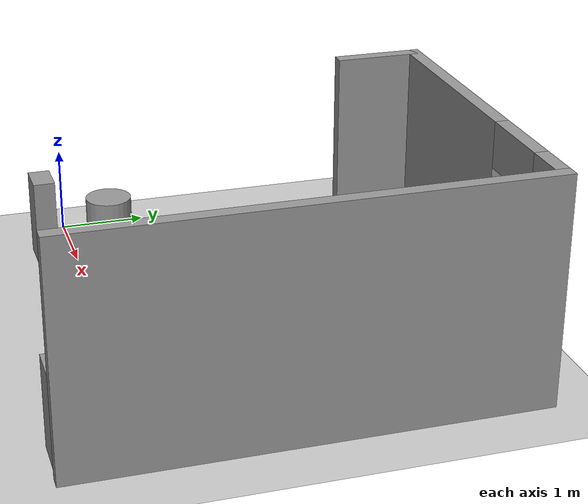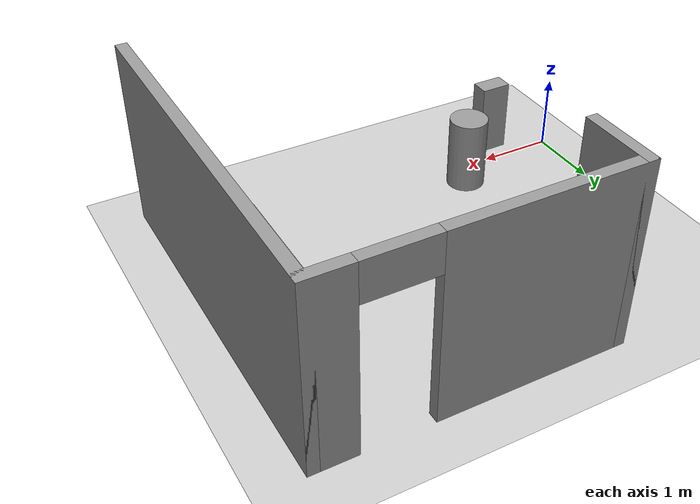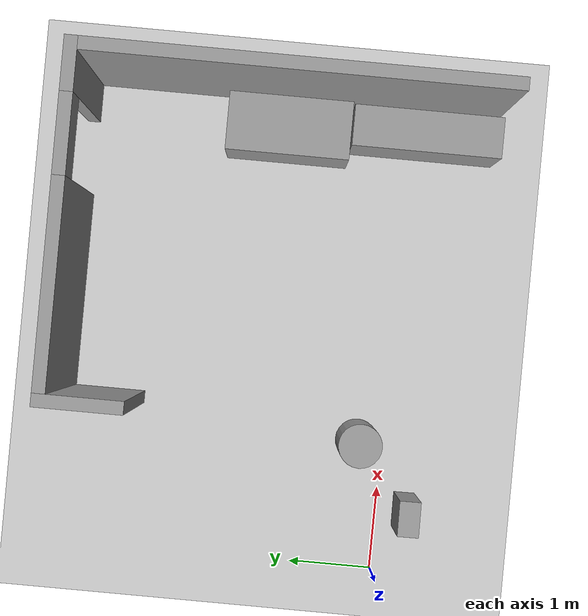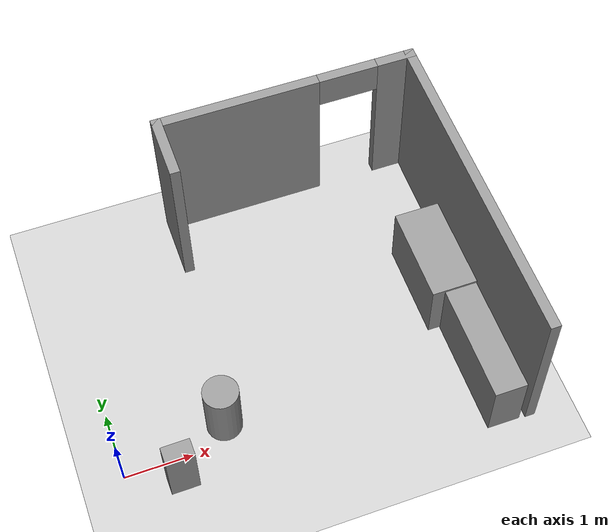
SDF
<sdf version="1.9">
 <world name="default">
  <model name="ground_plane">
   <static>true</static>
   <link name="link">
    <collision name="collision">
     <geometry><plane><normal>0 0 1</normal><size>100 100</size></plane></geometry>
     <surface><friction><ode><mu>100</mu><mu2>50</mu2></ode></friction></surface>
    </collision>
    <visual name="visual">
     <cast_shadows>false</cast_shadows>
     <geometry><plane><normal>0 0 1</normal><size>100 100</size></plane></geometry>
     <material>
      <script><uri>file://media/materials/scripts/gazebo.material</uri><name>Gazebo/Grey</name></script>
     </material>
    </visual>
   </link>
  </model>
  <model name="cma_L5">
   <pose>3.77502 1.45512 0 0 0 0</pose>
   <link name="Wall_0">
    <collision name="Wall_0_Collision">
     <geometry><box><size>1 0.14999999999999999 2.5</size></box></geometry>
     <pose>0 0 1.25 0 0 0</pose>
    </collision>
    <visual name="Wall_0_Visual">
     <pose>0 0 1.25 0 0 0</pose>
     <geometry><box><size>1 0.14999999999999999 2.5</size></box></geometry>
     <material>
      <script><uri>file://media/materials/scripts/gazebo.material</uri><name>Gazebo/Grey</name></script>
      <ambient>1 1 1 1</ambient>
     </material>
    </visual>
    <pose>-1.925 2 0 0 0 1.5708</pose>
   </link>
   <link name="Wall_1">
    <pose>0 2.4249999999999998 0 0 0 0</pose>
    <visual name="Wall_1_Visual_0">
     <pose>-0.75249999999999995 0 1.25 0 0 0</pose>
     <geometry><box><size>2.4950000000000001 0.14999999999999999 2.5</size></box></geometry>
     <material>
      <script><uri>file://media/materials/scripts/gazebo.material</uri><name>Gazebo/Grey</name></script>
      <ambient>1 1 1 1</ambient>
     </material>
    </visual>
    <collision name="Wall_1_Collision_0">
     <geometry><box><size>2.4950000000000001 0.14999999999999999 2.5</size></box></geometry>
     <pose>-0.75249999999999995 0 1.25 0 0 0</pose>
    </collision>
    <visual name="Wall_1_Visual_1">
     <pose>1.6975 0 1.25 0 0 0</pose>
     <geometry><box><size>0.60499999999999998 0.14999999999999999 2.5</size></box></geometry>
     <material>
      <script><uri>file://media/materials/scripts/gazebo.material</uri><name>Gazebo/Grey</name></script>
      <ambient>1 1 1 1</ambient>
     </material>
    </visual>
    <collision name="Wall_1_Collision_1">
     <geometry><box><size>0.60499999999999998 0.14999999999999999 2.5</size></box></geometry>
     <pose>1.6975 0 1.25 0 0 0</pose>
    </collision>
    <visual name="Wall_1_Visual_2">
     <pose>0.94499999999999995 0 2.25 0 0 0</pose>
     <geometry><box><size>0.90000000000000002 0.14999999999999999 0.5</size></box></geometry>
     <material>
      <script><uri>file://media/materials/scripts/gazebo.material</uri><name>Gazebo/Grey</name></script>
      <ambient>1 1 1 1</ambient>
     </material>
    </visual>
    <collision name="Wall_1_Collision_2">
     <geometry><box><size>0.90000000000000002 0.14999999999999999 0.5</size></box></geometry>
     <pose>0.94499999999999995 0 2.25 0 0 0</pose>
    </collision>
   </link>
   <link name="Wall_3">
    <collision name="Wall_3_Collision">
     <geometry><box><size>5 0.14999999999999999 2.5</size></box></geometry>
     <pose>0 0 1.25 0 0 0</pose>
    </collision>
    <visual name="Wall_3_Visual">
     <pose>0 0 1.25 0 0 0</pose>
     <geometry><box><size>5 0.14999999999999999 2.5</size></box></geometry>
     <material>
      <script><uri>file://media/materials/scripts/gazebo.material</uri><name>Gazebo/Grey</name></script>
      <ambient>1 1 1 1</ambient>
     </material>
    </visual>
    <pose>1.925 0 0 0 0 -1.5708</pose>
   </link>
   <static>true</static>
  </model>
  <model name="cma_picador_0">
   <link name="link_2">
    <pose>-0.7258 -1.6910400000000001 0 0 0 0</pose>
    <inertial>
     <mass>0.10473200000000001</mass>
     <inertia>
      <ixx>0.0092790600000000004</ixx>
      <ixy>0</ixy>
      <ixz>0</ixz>
      <iyy>0.010243</iyy>
      <iyz>0</iyz>
      <izz>0.0020667200000000002</izz>
     </inertia>
    </inertial>
    <visual name="visual">
     <geometry><box><size>0.416688 0.25134000000000001 1</size></box></geometry>
     <material>
      <lighting>true</lighting>
      <script><uri>file://media/materials/scripts/gazebo.material</uri><name>Gazebo/Grey</name></script>
      <ambient>0.300000012 0.300000012 0.300000012 1</ambient>
      <diffuse>0.699999988 0.699999988 0.699999988 1</diffuse>
      <specular>0.00999999978 0.00999999978 0.00999999978 1</specular>
      <emissive>0 0 0 1</emissive>
     </material>
    </visual>
    <collision name="collision">
     <geometry><box><size>0.416688 0.25134000000000001 1</size></box></geometry>
     <surface>
      <friction>
       <ode><mu>1</mu><mu2>1</mu2><fdir1>0 0 0</fdir1><slip1>0</slip1><slip2>0</slip2></ode>
       <torsional>
        <coefficient>1</coefficient>
        <patch_radius>0</patch_radius>
        <surface_radius>0</surface_radius>
        <use_patch_radius>true</use_patch_radius>
        <ode><slip>0</slip></ode>
       </torsional>
      </friction>
      <bounce><restitution_coefficient>0</restitution_coefficient><threshold>1000000</threshold></bounce>
      <contact>
       <collide_without_contact>false</collide_without_contact>
       <collide_without_contact_bitmask>1</collide_without_contact_bitmask>
       <collide_bitmask>1</collide_bitmask>
       <ode>
        <soft_cfm>0</soft_cfm>
        <soft_erp>0.20000000000000001</soft_erp>
        <kp>10000000000000</kp>
        <kd>1</kd>
        <max_vel>0.01</max_vel>
        <min_depth>0</min_depth>
       </ode>
       <bullet>
        <split_impulse>true</split_impulse>
        <split_impulse_penetration_threshold>-0.01</split_impulse_penetration_threshold>
        <soft_cfm>0</soft_cfm>
        <soft_erp>0.20000000000000001</soft_erp>
        <kp>10000000000000</kp>
        <kd>1</kd>
       </bullet>
      </contact>
     </surface>
    </collision>
   </link>
   <static>false</static>
   <pose>1.47237 1.3597600000000001 0.50000199999999995 9.9999999999999995e-07 2.0000000000000003e-06 0.0087860000000000004</pose>
  </model>
  <model name="cma_cesto">
   <link name="link_1">
    <pose>-0.32965899999999998 -1.55494 0 0 0 0</pose>
    <inertial>
     <mass>0.267897</mass>
     <inertia>
      <ixx>0.026810199999999999</ixx>
      <ixy>0</ixy>
      <ixz>0</ixz>
      <iyy>0.026810199999999999</iyy>
      <iyz>0</iyz>
      <izz>0.0089711099999999992</izz>
     </inertia>
    </inertial>
    <visual name="visual">
     <geometry><cylinder><radius>0.25879200000000002</radius><length>1</length></cylinder></geometry>
     <material>
      <lighting>true</lighting>
      <script><uri>file://media/materials/scripts/gazebo.material</uri><name>Gazebo/Grey</name></script>
      <ambient>0.300000012 0.300000012 0.300000012 1</ambient>
      <diffuse>0.699999988 0.699999988 0.699999988 1</diffuse>
      <specular>0.00999999978 0.00999999978 0.00999999978 1</specular>
      <emissive>0 0 0 1</emissive>
     </material>
    </visual>
    <collision name="collision">
     <geometry><cylinder><radius>0.25879200000000002</radius><length>1</length></cylinder></geometry>
     <surface>
      <friction>
       <ode><mu>1</mu><mu2>1</mu2><fdir1>0 0 0</fdir1><slip1>0</slip1><slip2>0</slip2></ode>
       <torsional>
        <coefficient>1</coefficient>
        <patch_radius>0</patch_radius>
        <surface_radius>0</surface_radius>
        <use_patch_radius>true</use_patch_radius>
        <ode><slip>0</slip></ode>
       </torsional>
      </friction>
      <bounce><restitution_coefficient>0</restitution_coefficient><threshold>1000000</threshold></bounce>
      <contact>
       <collide_without_contact>false</collide_without_contact>
       <collide_without_contact_bitmask>1</collide_without_contact_bitmask>
       <collide_bitmask>1</collide_bitmask>
       <ode>
        <soft_cfm>0</soft_cfm>
        <soft_erp>0.20000000000000001</soft_erp>
        <kp>10000000000000</kp>
        <kd>1</kd>
        <max_vel>0.01</max_vel>
        <min_depth>0</min_depth>
       </ode>
       <bullet>
        <split_impulse>true</split_impulse>
        <split_impulse_penetration_threshold>-0.01</split_impulse_penetration_threshold>
        <soft_cfm>0</soft_cfm>
        <soft_erp>0.20000000000000001</soft_erp>
        <kp>10000000000000</kp>
        <kd>1</kd>
       </bullet>
      </contact>
     </surface>
    </collision>
   </link>
   <static>false</static>
   <pose>1.9109799999999999 1.85863 0.49999199999999999 0 0 -0.013204999999999998</pose>
  </model>
  <model name="cma_geladeira">
   <link name="link_2">
    <pose>3.0000000000000001e-06 -3.9999999999999998e-06 0 0 0 0</pose>
    <inertial>
     <mass>0.994085</mass>
     <inertia>
      <ixx>0.258405</ixx>
      <ixy>0</ixy>
      <ixz>0</ixz>
      <iyy>0.12146800000000001</iyy>
      <iyz>0</iyz>
      <izz>0.21419199999999999</izz>
     </inertia>
    </inertial>
    <visual name="visual">
     <geometry><box><size>0.68284400000000001 1.4557899999999999 1</size></box></geometry>
     <material>
      <lighting>true</lighting>
      <script><uri>file://media/materials/scripts/gazebo.material</uri><name>Gazebo/Grey</name></script>
      <ambient>0.300000012 0.300000012 0.300000012 1</ambient>
      <diffuse>0.699999988 0.699999988 0.699999988 1</diffuse>
      <specular>0.00999999978 0.00999999978 0.00999999978 1</specular>
      <emissive>0 0 0 1</emissive>
     </material>
    </visual>
    <collision name="collision">
     <geometry><box><size>0.68284400000000001 1.4557899999999999 1</size></box></geometry>
     <surface>
      <friction>
       <ode><mu>1</mu><mu2>1</mu2><fdir1>0 0 0</fdir1><slip1>0</slip1><slip2>0</slip2></ode>
       <torsional>
        <coefficient>1</coefficient>
        <patch_radius>0</patch_radius>
        <surface_radius>0</surface_radius>
        <use_patch_radius>true</use_patch_radius>
        <ode><slip>0</slip></ode>
       </torsional>
      </friction>
      <bounce><restitution_coefficient>0</restitution_coefficient><threshold>1000000</threshold></bounce>
      <contact>
       <collide_without_contact>false</collide_without_contact>
       <collide_without_contact_bitmask>1</collide_without_contact_bitmask>
       <collide_bitmask>1</collide_bitmask>
       <ode>
        <soft_cfm>0</soft_cfm>
        <soft_erp>0.20000000000000001</soft_erp>
        <kp>10000000000000</kp>
        <kd>1</kd>
        <max_vel>0.01</max_vel>
        <min_depth>0</min_depth>
       </ode>
       <bullet>
        <split_impulse>true</split_impulse>
        <split_impulse_penetration_threshold>-0.01</split_impulse_penetration_threshold>
        <soft_cfm>0</soft_cfm>
        <soft_erp>0.20000000000000001</soft_erp>
        <kp>10000000000000</kp>
        <kd>1</kd>
       </bullet>
      </contact>
     </surface>
    </collision>
   </link>
   <static>false</static>
   <pose>5.2195799999999997 1.4771700000000001 0.5 0 0 0</pose>
  </model>
  <model name="cma_armario_coz_190x40cm">
   <link name="link_3">
    <pose>-3.0000000000000001e-06 9.9999999999999995e-07 0 0 0 0</pose>
    <inertial>
     <mass>0.84861799999999998</mass>
     <inertia>
      <ixx>0.28876000000000002</ixx>
      <ixy>0</ixy>
      <ixz>0</ixz>
      <iyy>0.087235900000000005</iyy>
      <iyz>0</iyz>
      <izz>0.23455899999999999</izz>
     </inertia>
    </inertial>
    <visual name="visual">
     <geometry><box><size>0.48330099999999998 1.7559199999999999 1</size></box></geometry>
     <material>
      <lighting>true</lighting>
      <script><uri>file://media/materials/scripts/gazebo.material</uri><name>Gazebo/Grey</name></script>
      <ambient>0.300000012 0.300000012 0.300000012 1</ambient>
      <diffuse>0.699999988 0.699999988 0.699999988 1</diffuse>
      <specular>0.00999999978 0.00999999978 0.00999999978 1</specular>
      <emissive>0 0 0 1</emissive>
     </material>
    </visual>
    <collision name="collision">
     <geometry><box><size>0.48330099999999998 1.7559199999999999 1</size></box></geometry>
     <surface>
      <friction>
       <ode><mu>1</mu><mu2>1</mu2><fdir1>0 0 0</fdir1><slip1>0</slip1><slip2>0</slip2></ode>
       <torsional>
        <coefficient>1</coefficient>
        <patch_radius>0</patch_radius>
        <surface_radius>0</surface_radius>
        <use_patch_radius>true</use_patch_radius>
        <ode><slip>0</slip></ode>
       </torsional>
      </friction>
      <bounce><restitution_coefficient>0</restitution_coefficient><threshold>1000000</threshold></bounce>
      <contact>
       <collide_without_contact>false</collide_without_contact>
       <collide_without_contact_bitmask>1</collide_without_contact_bitmask>
       <collide_bitmask>1</collide_bitmask>
       <ode>
        <soft_cfm>0</soft_cfm>
        <soft_erp>0.20000000000000001</soft_erp>
        <kp>10000000000000</kp>
        <kd>1</kd>
        <max_vel>0.01</max_vel>
        <min_depth>0</min_depth>
       </ode>
       <bullet>
        <split_impulse>true</split_impulse>
        <split_impulse_penetration_threshold>-0.01</split_impulse_penetration_threshold>
        <soft_cfm>0</soft_cfm>
        <soft_erp>0.20000000000000001</soft_erp>
        <kp>10000000000000</kp>
        <kd>1</kd>
       </bullet>
      </contact>
     </surface>
    </collision>
   </link>
   <static>false</static>
   <pose>5.29765 -0.14768500000000001 0.5 0 0 0</pose>
  </model>
 </world>
</sdf>
